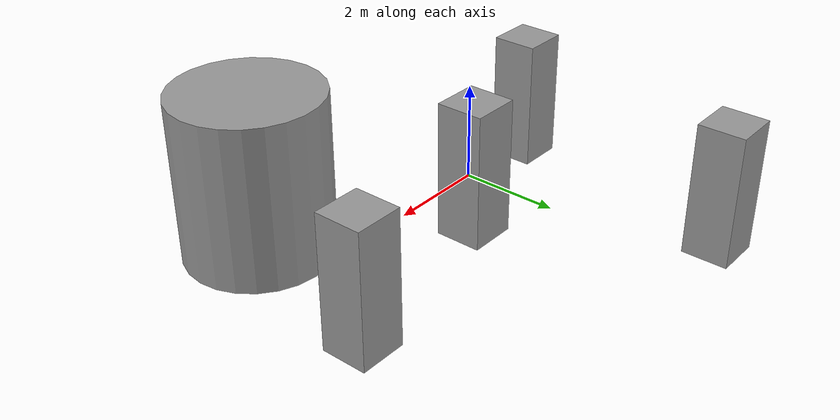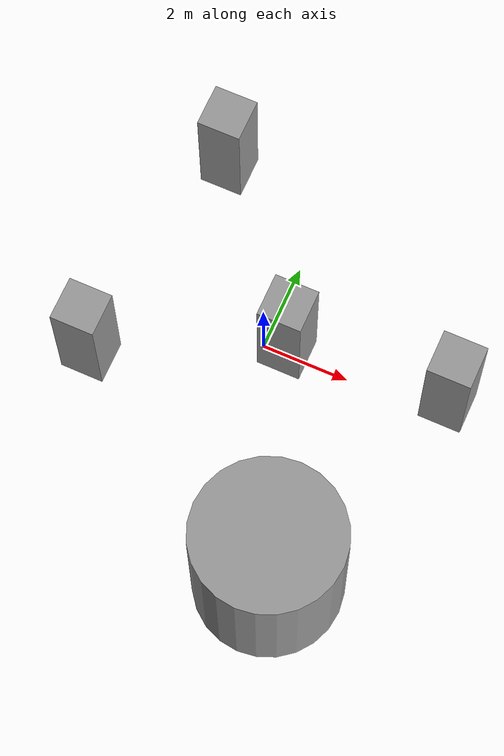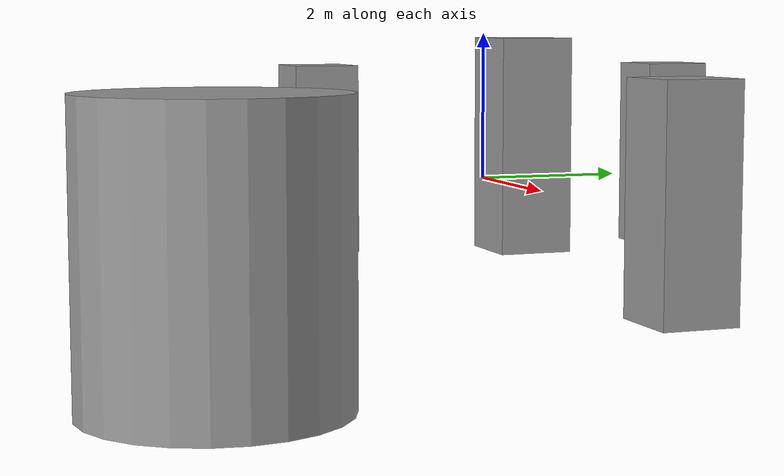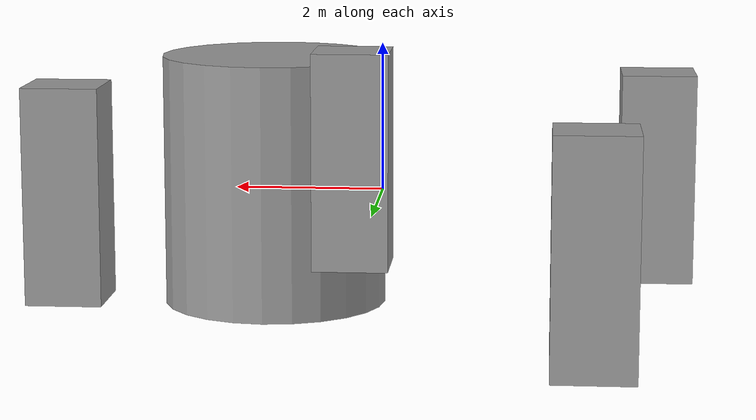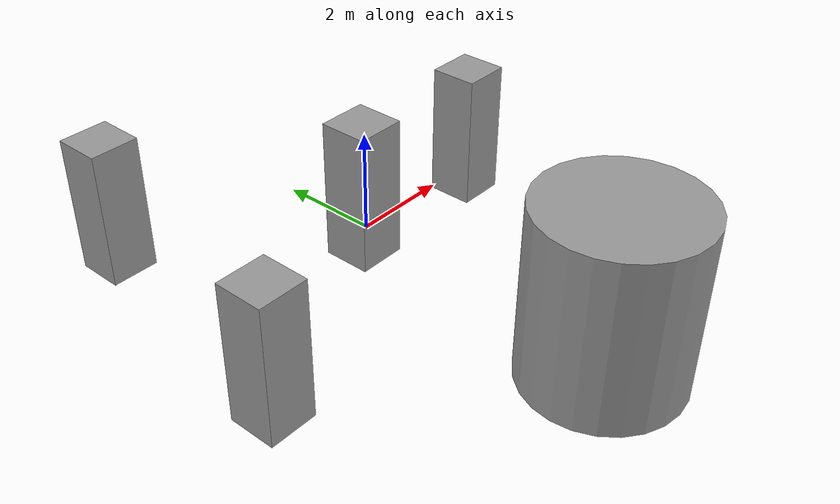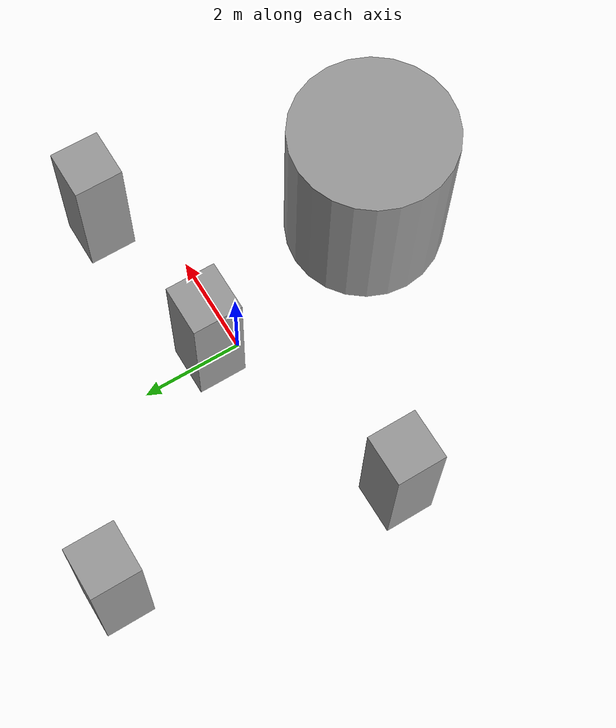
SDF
<?xml version='1.0'?>
<sdf version='1.6'>
  <model name='box_world'>
    <link name='link_0'>
      <inertial>
        <mass>2.97075</mass>
        <inertia>
          <ixx>2.34412</ixx>
          <ixy>0</ixy>
          <ixz>0</ixz>
          <iyy>2.35454</iyy>
          <iyz>0</iyz>
          <izz>0.505545</izz>
        </inertia>
        <pose frame=''>0 0 0 0 -0 0</pose>
      </inertial>
      <pose frame=''>-2.7822 4.25793 0.041124 0 -0 0</pose>
      <visual name='visual'>
        <pose frame=''>0 0 0 0 -0 0</pose>
        <geometry>
          <box>
            <size>1.02083 1 2.91012</size>
          </box>
        </geometry>
        <material>
          <lighting>1</lighting>
          <script>
            <uri>file://media/materials/scripts/gazebo.material</uri>
            <name>Gazebo/Grey</name>
          </script>
          <shader type='pixel'/>
        </material>
        <transparency>0</transparency>
        <cast_shadows>1</cast_shadows>
      </visual>
      <collision name='collision'>
        <laser_retro>0</laser_retro>
        <max_contacts>10</max_contacts>
        <pose frame=''>0 0 0 0 -0 0</pose>
        <geometry>
          <box>
            <size>1.02083 1 2.91012</size>
          </box>
        </geometry>
        <surface>
          <friction>
            <ode>
              <mu>1</mu>
              <mu2>1</mu2>
              <fdir1>0 0 0</fdir1>
              <slip1>0</slip1>
              <slip2>0</slip2>
            </ode>
            <torsional>
              <coefficient>1</coefficient>
              <patch_radius>0</patch_radius>
              <surface_radius>0</surface_radius>
              <use_patch_radius>1</use_patch_radius>
              <ode>
                <slip>0</slip>
              </ode>
            </torsional>
          </friction>
          <bounce>
            <restitution_coefficient>0</restitution_coefficient>
            <threshold>1e+06</threshold>
          </bounce>
          <contact>
            <collide_without_contact>0</collide_without_contact>
            <collide_without_contact_bitmask>1</collide_without_contact_bitmask>
            <collide_bitmask>1</collide_bitmask>
            <ode>
              <soft_cfm>0</soft_cfm>
              <soft_erp>0.2</soft_erp>
              <kp>1e+13</kp>
              <kd>1</kd>
              <max_vel>0.01</max_vel>
              <min_depth>0</min_depth>
            </ode>
            <bullet>
              <split_impulse>1</split_impulse>
              <split_impulse_penetration_threshold>-0.01</split_impulse_penetration_threshold>
              <soft_cfm>0</soft_cfm>
              <soft_erp>0.2</soft_erp>
              <kp>1e+13</kp>
              <kd>1</kd>
            </bullet>
          </contact>
        </surface>
      </collision>
    </link>
    <link name='link_0_clone'>
      <inertial>
        <mass>2.97075</mass>
        <inertia>
          <ixx>2.34412</ixx>
          <ixy>0</ixy>
          <ixz>0</ixz>
          <iyy>2.35454</iyy>
          <iyz>0</iyz>
          <izz>0.505545</izz>
        </inertia>
        <pose frame=''>0 0 0 0 -0 0</pose>
      </inertial>
      <pose frame=''>-3.75163 -1.28199 0.027568 0 -0 0</pose>
      <visual name='visual'>
        <pose frame=''>0 0 0 0 -0 0</pose>
        <geometry>
          <box>
            <size>1.02083 1 2.91012</size>
          </box>
        </geometry>
        <material>
          <lighting>1</lighting>
          <script>
            <uri>file://media/materials/scripts/gazebo.material</uri>
            <name>Gazebo/Grey</name>
          </script>
          <shader type='pixel'/>
        </material>
        <transparency>0</transparency>
        <cast_shadows>1</cast_shadows>
      </visual>
      <collision name='collision'>
        <laser_retro>0</laser_retro>
        <max_contacts>10</max_contacts>
        <pose frame=''>0 0 0 0 -0 0</pose>
        <geometry>
          <box>
            <size>1.02083 1 2.91012</size>
          </box>
        </geometry>
        <surface>
          <friction>
            <ode>
              <mu>1</mu>
              <mu2>1</mu2>
              <fdir1>0 0 0</fdir1>
              <slip1>0</slip1>
              <slip2>0</slip2>
            </ode>
            <torsional>
              <coefficient>1</coefficient>
              <patch_radius>0</patch_radius>
              <surface_radius>0</surface_radius>
              <use_patch_radius>1</use_patch_radius>
              <ode>
                <slip>0</slip>
              </ode>
            </torsional>
          </friction>
          <bounce>
            <restitution_coefficient>0</restitution_coefficient>
            <threshold>1e+06</threshold>
          </bounce>
          <contact>
            <collide_without_contact>0</collide_without_contact>
            <collide_without_contact_bitmask>1</collide_without_contact_bitmask>
            <collide_bitmask>1</collide_bitmask>
            <ode>
              <soft_cfm>0</soft_cfm>
              <soft_erp>0.2</soft_erp>
              <kp>1e+13</kp>
              <kd>1</kd>
              <max_vel>0.01</max_vel>
              <min_depth>0</min_depth>
            </ode>
            <bullet>
              <split_impulse>1</split_impulse>
              <split_impulse_penetration_threshold>-0.01</split_impulse_penetration_threshold>
              <soft_cfm>0</soft_cfm>
              <soft_erp>0.2</soft_erp>
              <kp>1e+13</kp>
              <kd>1</kd>
            </bullet>
          </contact>
        </surface>
      </collision>
    </link>
    <link name='link_0_clone_clone'>
      <inertial>
        <mass>2.97075</mass>
        <inertia>
          <ixx>2.34412</ixx>
          <ixy>0</ixy>
          <ixz>0</ixz>
          <iyy>2.35454</iyy>
          <iyz>0</iyz>
          <izz>0.505545</izz>
        </inertia>
        <pose frame=''>0 0 0 0 -0 0</pose>
      </inertial>
      <pose frame=''>0.376281 0.430177 0.487104 0 -0 0</pose>
      <visual name='visual'>
        <pose frame=''>0 0 0 0 -0 0</pose>
        <geometry>
          <box>
            <size>1.02083 1 2.91012</size>
          </box>
        </geometry>
        <material>
          <lighting>1</lighting>
          <script>
            <uri>file://media/materials/scripts/gazebo.material</uri>
            <name>Gazebo/Grey</name>
          </script>
          <shader type='pixel'/>
        </material>
        <transparency>0</transparency>
        <cast_shadows>1</cast_shadows>
      </visual>
      <collision name='collision'>
        <laser_retro>0</laser_retro>
        <max_contacts>10</max_contacts>
        <pose frame=''>0 0 0 0 -0 0</pose>
        <geometry>
          <box>
            <size>1.02083 1 2.91012</size>
          </box>
        </geometry>
        <surface>
          <friction>
            <ode>
              <mu>1</mu>
              <mu2>1</mu2>
              <fdir1>0 0 0</fdir1>
              <slip1>0</slip1>
              <slip2>0</slip2>
            </ode>
            <torsional>
              <coefficient>1</coefficient>
              <patch_radius>0</patch_radius>
              <surface_radius>0</surface_radius>
              <use_patch_radius>1</use_patch_radius>
              <ode>
                <slip>0</slip>
              </ode>
            </torsional>
          </friction>
          <bounce>
            <restitution_coefficient>0</restitution_coefficient>
            <threshold>1e+06</threshold>
          </bounce>
          <contact>
            <collide_without_contact>0</collide_without_contact>
            <collide_without_contact_bitmask>1</collide_without_contact_bitmask>
            <collide_bitmask>1</collide_bitmask>
            <ode>
              <soft_cfm>0</soft_cfm>
              <soft_erp>0.2</soft_erp>
              <kp>1e+13</kp>
              <kd>1</kd>
              <max_vel>0.01</max_vel>
              <min_depth>0</min_depth>
            </ode>
            <bullet>
              <split_impulse>1</split_impulse>
              <split_impulse_penetration_threshold>-0.01</split_impulse_penetration_threshold>
              <soft_cfm>0</soft_cfm>
              <soft_erp>0.2</soft_erp>
              <kp>1e+13</kp>
              <kd>1</kd>
            </bullet>
          </contact>
        </surface>
      </collision>
    </link>
    <link name='link_0_clone_clone_0'>
      <inertial>
        <mass>2.97075</mass>
        <inertia>
          <ixx>2.34412</ixx>
          <ixy>0</ixy>
          <ixz>0</ixz>
          <iyy>2.35454</iyy>
          <iyz>0</iyz>
          <izz>0.505545</izz>
        </inertia>
        <pose frame=''>0 0 0 0 -0 0</pose>
      </inertial>
      <pose frame=''>4.1497 0.871118 0.05685 0 -0 0</pose>
      <visual name='visual'>
        <pose frame=''>0 0 0 0 -0 0</pose>
        <geometry>
          <box>
            <size>1.02083 1 2.91012</size>
          </box>
        </geometry>
        <material>
          <lighting>1</lighting>
          <script>
            <uri>file://media/materials/scripts/gazebo.material</uri>
            <name>Gazebo/Grey</name>
          </script>
          <shader type='pixel'/>
        </material>
        <transparency>0</transparency>
        <cast_shadows>1</cast_shadows>
      </visual>
      <collision name='collision'>
        <laser_retro>0</laser_retro>
        <max_contacts>10</max_contacts>
        <pose frame=''>0 0 0 0 -0 0</pose>
        <geometry>
          <box>
            <size>1.02083 1 2.91012</size>
          </box>
        </geometry>
        <surface>
          <friction>
            <ode>
              <mu>1</mu>
              <mu2>1</mu2>
              <fdir1>0 0 0</fdir1>
              <slip1>0</slip1>
              <slip2>0</slip2>
            </ode>
            <torsional>
              <coefficient>1</coefficient>
              <patch_radius>0</patch_radius>
              <surface_radius>0</surface_radius>
              <use_patch_radius>1</use_patch_radius>
              <ode>
                <slip>0</slip>
              </ode>
            </torsional>
          </friction>
          <bounce>
            <restitution_coefficient>0</restitution_coefficient>
            <threshold>1e+06</threshold>
          </bounce>
          <contact>
            <collide_without_contact>0</collide_without_contact>
            <collide_without_contact_bitmask>1</collide_without_contact_bitmask>
            <collide_bitmask>1</collide_bitmask>
            <ode>
              <soft_cfm>0</soft_cfm>
              <soft_erp>0.2</soft_erp>
              <kp>1e+13</kp>
              <kd>1</kd>
              <max_vel>0.01</max_vel>
              <min_depth>0</min_depth>
            </ode>
            <bullet>
              <split_impulse>1</split_impulse>
              <split_impulse_penetration_threshold>-0.01</split_impulse_penetration_threshold>
              <soft_cfm>0</soft_cfm>
              <soft_erp>0.2</soft_erp>
              <kp>1e+13</kp>
              <kd>1</kd>
            </bullet>
          </contact>
        </surface>
      </collision>
    </link>
    <link name='link_1'>
      <inertial>
        <mass>46.377</mass>
        <inertia>
          <ixx>92.8557</ixx>
          <ixy>0</ixy>
          <ixz>0</ixz>
          <iyy>92.8557</iyy>
          <iyz>0</iyz>
          <izz>69.2631</izz>
        </inertia>
        <pose frame=''>0 0 0 0 -0 0</pose>
      </inertial>
      <pose frame=''>2.00785 -4.27724 -0.612651 0 -0 0</pose>
      <visual name='visual'>
        <pose frame=''>0 0 0 0 -0 0</pose>
        <geometry>
          <cylinder>
            <radius>1.72828</radius>
            <length>3.88142</length>
          </cylinder>
        </geometry>
        <material>
          <lighting>1</lighting>
          <script>
            <uri>file://media/materials/scripts/gazebo.material</uri>
            <name>Gazebo/Grey</name>
          </script>
          <shader type='pixel'/>
        </material>
        <transparency>0</transparency>
        <cast_shadows>1</cast_shadows>
      </visual>
      <collision name='collision'>
        <laser_retro>0</laser_retro>
        <max_contacts>10</max_contacts>
        <pose frame=''>0 0 0 0 -0 0</pose>
        <geometry>
          <cylinder>
            <radius>1.72828</radius>
            <length>3.88142</length>
          </cylinder>
        </geometry>
        <surface>
          <friction>
            <ode>
              <mu>1</mu>
              <mu2>1</mu2>
              <fdir1>0 0 0</fdir1>
              <slip1>0</slip1>
              <slip2>0</slip2>
            </ode>
            <torsional>
              <coefficient>1</coefficient>
              <patch_radius>0</patch_radius>
              <surface_radius>0</surface_radius>
              <use_patch_radius>1</use_patch_radius>
              <ode>
                <slip>0</slip>
              </ode>
            </torsional>
          </friction>
          <bounce>
            <restitution_coefficient>0</restitution_coefficient>
            <threshold>1e+06</threshold>
          </bounce>
          <contact>
            <collide_without_contact>0</collide_without_contact>
            <collide_without_contact_bitmask>1</collide_without_contact_bitmask>
            <collide_bitmask>1</collide_bitmask>
            <ode>
              <soft_cfm>0</soft_cfm>
              <soft_erp>0.2</soft_erp>
              <kp>1e+13</kp>
              <kd>1</kd>
              <max_vel>0.01</max_vel>
              <min_depth>0</min_depth>
            </ode>
            <bullet>
              <split_impulse>1</split_impulse>
              <split_impulse_penetration_threshold>-0.01</split_impulse_penetration_threshold>
              <soft_cfm>0</soft_cfm>
              <soft_erp>0.2</soft_erp>
              <kp>1e+13</kp>
              <kd>1</kd>
            </bullet>
          </contact>
        </surface>
      </collision>
    </link>
    <static>0</static>
    <allow_auto_disable>1</allow_auto_disable>
  </model>
</sdf>
